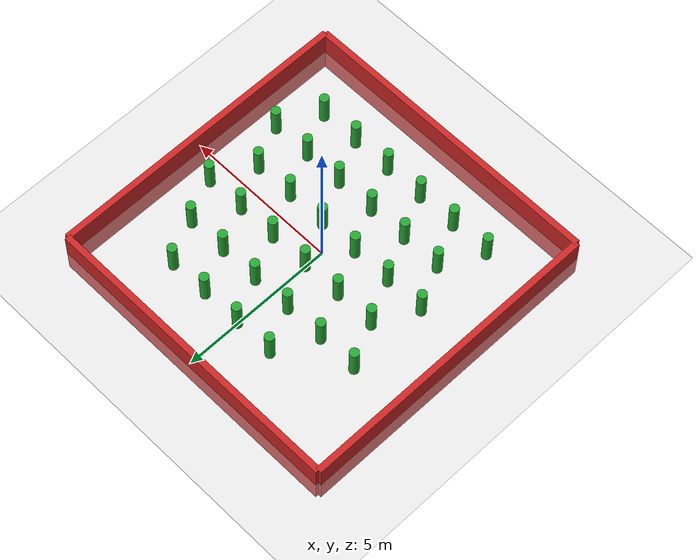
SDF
<?xml version="1.0" ?>

<sdf version="1.6">
  <world name="cluttered_forest">

    <physics type="ode">
      <max_step_size>0.001</max_step_size>
      <real_time_factor>1.0</real_time_factor>
    </physics>

    <model name="ground_plane">
      <static>true</static>
      <link name="link">
        <collision name="collision">
          <geometry><plane><normal>0 0 1</normal><size>100 100</size></plane></geometry>
        </collision>
        <visual name="visual">
          <geometry><plane><normal>0 0 1</normal><size>100 100</size></plane></geometry>
          <material>
            <script>
              <uri>file://media/materials/scripts/gazebo.material</uri>
              <name>Gazebo/Grey</name>
            </script>
          </material>
        </visual>
      </link>
    </model>

    <light name="sun" type="directional">
      <cast_shadows>1</cast_shadows>
      <pose>0 0 10 0 0 0</pose>
      <diffuse>0.8 0.8 0.8 1</diffuse>
      <specular>0.2 0.2 0.2 1</specular>
      <attenuation>
        <range>1000</range><constant>0.9</constant>
        <linear>0.01</linear><quadratic>0.001</quadratic>
      </attenuation>
      <direction>-0.5 0.1 -0.9</direction>
    </light>

    <model name="north_wall">
      <static>true</static><pose>0 5 0 0 0 0</pose>
      <link name="link">
        <collision name="collision"><geometry><box><size>10 0.2 1.5</size></box></geometry></collision>
        <visual name="visual">
          <geometry><box><size>10 0.2 1.5</size></box></geometry>
          <material><script><uri>file://media/materials/scripts/gazebo.material</uri><name>Gazebo/Red</name></script></material>
        </visual>
      </link>
    </model>

    <model name="south_wall">
      <static>true</static><pose>0 -5 0 0 0 0</pose>
      <link name="link">
        <collision name="collision"><geometry><box><size>10 0.2 1.5</size></box></geometry></collision>
        <visual name="visual">
          <geometry><box><size>10 0.2 1.5</size></box></geometry>
          <material><script><uri>file://media/materials/scripts/gazebo.material</uri><name>Gazebo/Red</name></script></material>
        </visual>
      </link>
    </model>

    <model name="east_wall">
      <static>true</static><pose>5 0 0 0 0 0</pose>
      <link name="link">
        <collision name="collision"><geometry><box><size>0.2 10 1.5</size></box></geometry></collision>
        <visual name="visual">
          <geometry><box><size>0.2 10 1.5</size></box></geometry>
          <material><script><uri>file://media/materials/scripts/gazebo.material</uri><name>Gazebo/Red</name></script></material>
        </visual>
      </link>
    </model>

    <model name="west_wall">
      <static>true</static><pose>-5 0 0 0 0 0</pose>
      <link name="link">
        <collision name="collision"><geometry><box><size>0.2 10 1.5</size></box></geometry></collision>
        <visual name="visual">
          <geometry><box><size>0.2 10 1.5</size></box></geometry>
          <material><script><uri>file://media/materials/scripts/gazebo.material</uri><name>Gazebo/Red</name></script></material>
        </visual>
      </link>
    </model>

    <model name="pillar_r0c0"><static>true</static><pose>-3.25 -3.25 0.5 0 0 0</pose>
      <link name="link">
        <collision name="col"><geometry><cylinder><radius>0.15</radius><length>1.0</length></cylinder></geometry></collision>
        <visual name="vis"><geometry><cylinder><radius>0.15</radius><length>1.0</length></cylinder></geometry>
          <material><script><uri>file://media/materials/scripts/gazebo.material</uri><name>Gazebo/Green</name></script></material></visual>
      </link></model>

    <model name="pillar_r0c1"><static>true</static><pose>-1.95 -3.25 0.5 0 0 0</pose>
      <link name="link">
        <collision name="col"><geometry><cylinder><radius>0.15</radius><length>1.0</length></cylinder></geometry></collision>
        <visual name="vis"><geometry><cylinder><radius>0.15</radius><length>1.0</length></cylinder></geometry>
          <material><script><uri>file://media/materials/scripts/gazebo.material</uri><name>Gazebo/Green</name></script></material></visual>
      </link></model>

    <model name="pillar_r0c2"><static>true</static><pose>-0.65 -3.25 0.5 0 0 0</pose>
      <link name="link">
        <collision name="col"><geometry><cylinder><radius>0.15</radius><length>1.0</length></cylinder></geometry></collision>
        <visual name="vis"><geometry><cylinder><radius>0.15</radius><length>1.0</length></cylinder></geometry>
          <material><script><uri>file://media/materials/scripts/gazebo.material</uri><name>Gazebo/Green</name></script></material></visual>
      </link></model>

    <model name="pillar_r0c3"><static>true</static><pose>0.65 -3.25 0.5 0 0 0</pose>
      <link name="link">
        <collision name="col"><geometry><cylinder><radius>0.15</radius><length>1.0</length></cylinder></geometry></collision>
        <visual name="vis"><geometry><cylinder><radius>0.15</radius><length>1.0</length></cylinder></geometry>
          <material><script><uri>file://media/materials/scripts/gazebo.material</uri><name>Gazebo/Green</name></script></material></visual>
      </link></model>

    <model name="pillar_r0c4"><static>true</static><pose>1.95 -3.25 0.5 0 0 0</pose>
      <link name="link">
        <collision name="col"><geometry><cylinder><radius>0.15</radius><length>1.0</length></cylinder></geometry></collision>
        <visual name="vis"><geometry><cylinder><radius>0.15</radius><length>1.0</length></cylinder></geometry>
          <material><script><uri>file://media/materials/scripts/gazebo.material</uri><name>Gazebo/Green</name></script></material></visual>
      </link></model>

    <model name="pillar_r0c5"><static>true</static><pose>3.25 -3.25 0.5 0 0 0</pose>
      <link name="link">
        <collision name="col"><geometry><cylinder><radius>0.15</radius><length>1.0</length></cylinder></geometry></collision>
        <visual name="vis"><geometry><cylinder><radius>0.15</radius><length>1.0</length></cylinder></geometry>
          <material><script><uri>file://media/materials/scripts/gazebo.material</uri><name>Gazebo/Green</name></script></material></visual>
      </link></model>

    <!-- ── Row 1  (Y = -1.95, stagger +0.65) ──────────────────────────── -->
    <model name="pillar_r1c0"><static>true</static><pose>-2.60 -1.95 0.5 0 0 0</pose>
      <link name="link">
        <collision name="col"><geometry><cylinder><radius>0.15</radius><length>1.0</length></cylinder></geometry></collision>
        <visual name="vis"><geometry><cylinder><radius>0.15</radius><length>1.0</length></cylinder></geometry>
          <material><script><uri>file://media/materials/scripts/gazebo.material</uri><name>Gazebo/Green</name></script></material></visual>
      </link></model>

    <model name="pillar_r1c1"><static>true</static><pose>-1.30 -1.95 0.5 0 0 0</pose>
      <link name="link">
        <collision name="col"><geometry><cylinder><radius>0.15</radius><length>1.0</length></cylinder></geometry></collision>
        <visual name="vis"><geometry><cylinder><radius>0.15</radius><length>1.0</length></cylinder></geometry>
          <material><script><uri>file://media/materials/scripts/gazebo.material</uri><name>Gazebo/Green</name></script></material></visual>
      </link></model>

    <model name="pillar_r1c2"><static>true</static><pose>0.00 -1.95 0.5 0 0 0</pose>
      <link name="link">
        <collision name="col"><geometry><cylinder><radius>0.15</radius><length>1.0</length></cylinder></geometry></collision>
        <visual name="vis"><geometry><cylinder><radius>0.15</radius><length>1.0</length></cylinder></geometry>
          <material><script><uri>file://media/materials/scripts/gazebo.material</uri><name>Gazebo/Green</name></script></material></visual>
      </link></model>

    <model name="pillar_r1c3"><static>true</static><pose>1.30 -1.95 0.5 0 0 0</pose>
      <link name="link">
        <collision name="col"><geometry><cylinder><radius>0.15</radius><length>1.0</length></cylinder></geometry></collision>
        <visual name="vis"><geometry><cylinder><radius>0.15</radius><length>1.0</length></cylinder></geometry>
          <material><script><uri>file://media/materials/scripts/gazebo.material</uri><name>Gazebo/Green</name></script></material></visual>
      </link></model>

    <model name="pillar_r1c4"><static>true</static><pose>2.60 -1.95 0.5 0 0 0</pose>
      <link name="link">
        <collision name="col"><geometry><cylinder><radius>0.15</radius><length>1.0</length></cylinder></geometry></collision>
        <visual name="vis"><geometry><cylinder><radius>0.15</radius><length>1.0</length></cylinder></geometry>
          <material><script><uri>file://media/materials/scripts/gazebo.material</uri><name>Gazebo/Green</name></script></material></visual>
      </link></model>

    <model name="pillar_r1c5"><static>true</static><pose>3.90 -1.95 0.5 0 0 0</pose>
      <link name="link">
        <collision name="col"><geometry><cylinder><radius>0.15</radius><length>1.0</length></cylinder></geometry></collision>
        <visual name="vis"><geometry><cylinder><radius>0.15</radius><length>1.0</length></cylinder></geometry>
          <material><script><uri>file://media/materials/scripts/gazebo.material</uri><name>Gazebo/Green</name></script></material></visual>
      </link></model>

    <model name="pillar_r2c0"><static>true</static><pose>-3.25 -0.65 0.5 0 0 0</pose>
      <link name="link">
        <collision name="col"><geometry><cylinder><radius>0.15</radius><length>1.0</length></cylinder></geometry></collision>
        <visual name="vis"><geometry><cylinder><radius>0.15</radius><length>1.0</length></cylinder></geometry>
          <material><script><uri>file://media/materials/scripts/gazebo.material</uri><name>Gazebo/Green</name></script></material></visual>
      </link></model>

    <model name="pillar_r2c1"><static>true</static><pose>-1.95 -0.65 0.5 0 0 0</pose>
      <link name="link">
        <collision name="col"><geometry><cylinder><radius>0.15</radius><length>1.0</length></cylinder></geometry></collision>
        <visual name="vis"><geometry><cylinder><radius>0.15</radius><length>1.0</length></cylinder></geometry>
          <material><script><uri>file://media/materials/scripts/gazebo.material</uri><name>Gazebo/Green</name></script></material></visual>
      </link></model>

    <model name="pillar_r2c2"><static>true</static><pose>-0.65 -0.65 0.5 0 0 0</pose>
      <link name="link">
        <collision name="col"><geometry><cylinder><radius>0.15</radius><length>1.0</length></cylinder></geometry></collision>
        <visual name="vis"><geometry><cylinder><radius>0.15</radius><length>1.0</length></cylinder></geometry>
          <material><script><uri>file://media/materials/scripts/gazebo.material</uri><name>Gazebo/Green</name></script></material></visual>
      </link></model>

    <model name="pillar_r2c3"><static>true</static><pose>0.65 -0.65 0.5 0 0 0</pose>
      <link name="link">
        <collision name="col"><geometry><cylinder><radius>0.15</radius><length>1.0</length></cylinder></geometry></collision>
        <visual name="vis"><geometry><cylinder><radius>0.15</radius><length>1.0</length></cylinder></geometry>
          <material><script><uri>file://media/materials/scripts/gazebo.material</uri><name>Gazebo/Green</name></script></material></visual>
      </link></model>

    <model name="pillar_r2c4"><static>true</static><pose>1.95 -0.65 0.5 0 0 0</pose>
      <link name="link">
        <collision name="col"><geometry><cylinder><radius>0.15</radius><length>1.0</length></cylinder></geometry></collision>
        <visual name="vis"><geometry><cylinder><radius>0.15</radius><length>1.0</length></cylinder></geometry>
          <material><script><uri>file://media/materials/scripts/gazebo.material</uri><name>Gazebo/Green</name></script></material></visual>
      </link></model>

    <model name="pillar_r2c5"><static>true</static><pose>3.25 -0.65 0.5 0 0 0</pose>
      <link name="link">
        <collision name="col"><geometry><cylinder><radius>0.15</radius><length>1.0</length></cylinder></geometry></collision>
        <visual name="vis"><geometry><cylinder><radius>0.15</radius><length>1.0</length></cylinder></geometry>
          <material><script><uri>file://media/materials/scripts/gazebo.material</uri><name>Gazebo/Green</name></script></material></visual>
      </link></model>

    <model name="pillar_r3c0"><static>true</static><pose>-2.60 0.65 0.5 0 0 0</pose>
      <link name="link">
        <collision name="col"><geometry><cylinder><radius>0.15</radius><length>1.0</length></cylinder></geometry></collision>
        <visual name="vis"><geometry><cylinder><radius>0.15</radius><length>1.0</length></cylinder></geometry>
          <material><script><uri>file://media/materials/scripts/gazebo.material</uri><name>Gazebo/Green</name></script></material></visual>
      </link></model>

    <model name="pillar_r3c1"><static>true</static><pose>-1.30 0.65 0.5 0 0 0</pose>
      <link name="link">
        <collision name="col"><geometry><cylinder><radius>0.15</radius><length>1.0</length></cylinder></geometry></collision>
        <visual name="vis"><geometry><cylinder><radius>0.15</radius><length>1.0</length></cylinder></geometry>
          <material><script><uri>file://media/materials/scripts/gazebo.material</uri><name>Gazebo/Green</name></script></material></visual>
      </link></model>

    <model name="pillar_r3c2"><static>true</static><pose>0.00 0.65 0.5 0 0 0</pose>
      <link name="link">
        <collision name="col"><geometry><cylinder><radius>0.15</radius><length>1.0</length></cylinder></geometry></collision>
        <visual name="vis"><geometry><cylinder><radius>0.15</radius><length>1.0</length></cylinder></geometry>
          <material><script><uri>file://media/materials/scripts/gazebo.material</uri><name>Gazebo/Green</name></script></material></visual>
      </link></model>

    <model name="pillar_r3c3"><static>true</static><pose>1.30 0.65 0.5 0 0 0</pose>
      <link name="link">
        <collision name="col"><geometry><cylinder><radius>0.15</radius><length>1.0</length></cylinder></geometry></collision>
        <visual name="vis"><geometry><cylinder><radius>0.15</radius><length>1.0</length></cylinder></geometry>
          <material><script><uri>file://media/materials/scripts/gazebo.material</uri><name>Gazebo/Green</name></script></material></visual>
      </link></model>

    <model name="pillar_r3c4"><static>true</static><pose>2.60 0.65 0.5 0 0 0</pose>
      <link name="link">
        <collision name="col"><geometry><cylinder><radius>0.15</radius><length>1.0</length></cylinder></geometry></collision>
        <visual name="vis"><geometry><cylinder><radius>0.15</radius><length>1.0</length></cylinder></geometry>
          <material><script><uri>file://media/materials/scripts/gazebo.material</uri><name>Gazebo/Green</name></script></material></visual>
      </link></model>

    <model name="pillar_r3c5"><static>true</static><pose>3.90 0.65 0.5 0 0 0</pose>
      <link name="link">
        <collision name="col"><geometry><cylinder><radius>0.15</radius><length>1.0</length></cylinder></geometry></collision>
        <visual name="vis"><geometry><cylinder><radius>0.15</radius><length>1.0</length></cylinder></geometry>
          <material><script><uri>file://media/materials/scripts/gazebo.material</uri><name>Gazebo/Green</name></script></material></visual>
      </link></model>

    <model name="pillar_r4c0"><static>true</static><pose>-3.25 1.95 0.5 0 0 0</pose>
      <link name="link">
        <collision name="col"><geometry><cylinder><radius>0.15</radius><length>1.0</length></cylinder></geometry></collision>
        <visual name="vis"><geometry><cylinder><radius>0.15</radius><length>1.0</length></cylinder></geometry>
          <material><script><uri>file://media/materials/scripts/gazebo.material</uri><name>Gazebo/Green</name></script></material></visual>
      </link></model>

    <model name="pillar_r4c1"><static>true</static><pose>-1.95 1.95 0.5 0 0 0</pose>
      <link name="link">
        <collision name="col"><geometry><cylinder><radius>0.15</radius><length>1.0</length></cylinder></geometry></collision>
        <visual name="vis"><geometry><cylinder><radius>0.15</radius><length>1.0</length></cylinder></geometry>
          <material><script><uri>file://media/materials/scripts/gazebo.material</uri><name>Gazebo/Green</name></script></material></visual>
      </link></model>

    <model name="pillar_r4c2"><static>true</static><pose>-0.65 1.95 0.5 0 0 0</pose>
      <link name="link">
        <collision name="col"><geometry><cylinder><radius>0.15</radius><length>1.0</length></cylinder></geometry></collision>
        <visual name="vis"><geometry><cylinder><radius>0.15</radius><length>1.0</length></cylinder></geometry>
          <material><script><uri>file://media/materials/scripts/gazebo.material</uri><name>Gazebo/Green</name></script></material></visual>
      </link></model>

    <model name="pillar_r4c3"><static>true</static><pose>0.65 1.95 0.5 0 0 0</pose>
      <link name="link">
        <collision name="col"><geometry><cylinder><radius>0.15</radius><length>1.0</length></cylinder></geometry></collision>
        <visual name="vis"><geometry><cylinder><radius>0.15</radius><length>1.0</length></cylinder></geometry>
          <material><script><uri>file://media/materials/scripts/gazebo.material</uri><name>Gazebo/Green</name></script></material></visual>
      </link></model>

    <model name="pillar_r4c4"><static>true</static><pose>1.95 1.95 0.5 0 0 0</pose>
      <link name="link">
        <collision name="col"><geometry><cylinder><radius>0.15</radius><length>1.0</length></cylinder></geometry></collision>
        <visual name="vis"><geometry><cylinder><radius>0.15</radius><length>1.0</length></cylinder></geometry>
          <material><script><uri>file://media/materials/scripts/gazebo.material</uri><name>Gazebo/Green</name></script></material></visual>
      </link></model>

    <model name="pillar_r4c5"><static>true</static><pose>3.25 1.95 0.5 0 0 0</pose>
      <link name="link">
        <collision name="col"><geometry><cylinder><radius>0.15</radius><length>1.0</length></cylinder></geometry></collision>
        <visual name="vis"><geometry><cylinder><radius>0.15</radius><length>1.0</length></cylinder></geometry>
          <material><script><uri>file://media/materials/scripts/gazebo.material</uri><name>Gazebo/Green</name></script></material></visual>
      </link></model>

    <model name="pillar_r5c1"><static>true</static><pose>-1.30 3.25 0.5 0 0 0</pose>
      <link name="link">
        <collision name="col"><geometry><cylinder><radius>0.15</radius><length>1.0</length></cylinder></geometry></collision>
        <visual name="vis"><geometry><cylinder><radius>0.15</radius><length>1.0</length></cylinder></geometry>
          <material><script><uri>file://media/materials/scripts/gazebo.material</uri><name>Gazebo/Green</name></script></material></visual>
      </link></model>

    <model name="pillar_r5c2"><static>true</static><pose>0.00 3.25 0.5 0 0 0</pose>
      <link name="link">
        <collision name="col"><geometry><cylinder><radius>0.15</radius><length>1.0</length></cylinder></geometry></collision>
        <visual name="vis"><geometry><cylinder><radius>0.15</radius><length>1.0</length></cylinder></geometry>
          <material><script><uri>file://media/materials/scripts/gazebo.material</uri><name>Gazebo/Green</name></script></material></visual>
      </link></model>

    <model name="pillar_r5c3"><static>true</static><pose>1.30 3.25 0.5 0 0 0</pose>
      <link name="link">
        <collision name="col"><geometry><cylinder><radius>0.15</radius><length>1.0</length></cylinder></geometry></collision>
        <visual name="vis"><geometry><cylinder><radius>0.15</radius><length>1.0</length></cylinder></geometry>
          <material><script><uri>file://media/materials/scripts/gazebo.material</uri><name>Gazebo/Green</name></script></material></visual>
      </link></model>

    <model name="pillar_r5c4"><static>true</static><pose>2.60 3.25 0.5 0 0 0</pose>
      <link name="link">
        <collision name="col"><geometry><cylinder><radius>0.15</radius><length>1.0</length></cylinder></geometry></collision>
        <visual name="vis"><geometry><cylinder><radius>0.15</radius><length>1.0</length></cylinder></geometry>
          <material><script><uri>file://media/materials/scripts/gazebo.material</uri><name>Gazebo/Green</name></script></material></visual>
      </link></model>

  </world>
</sdf>
